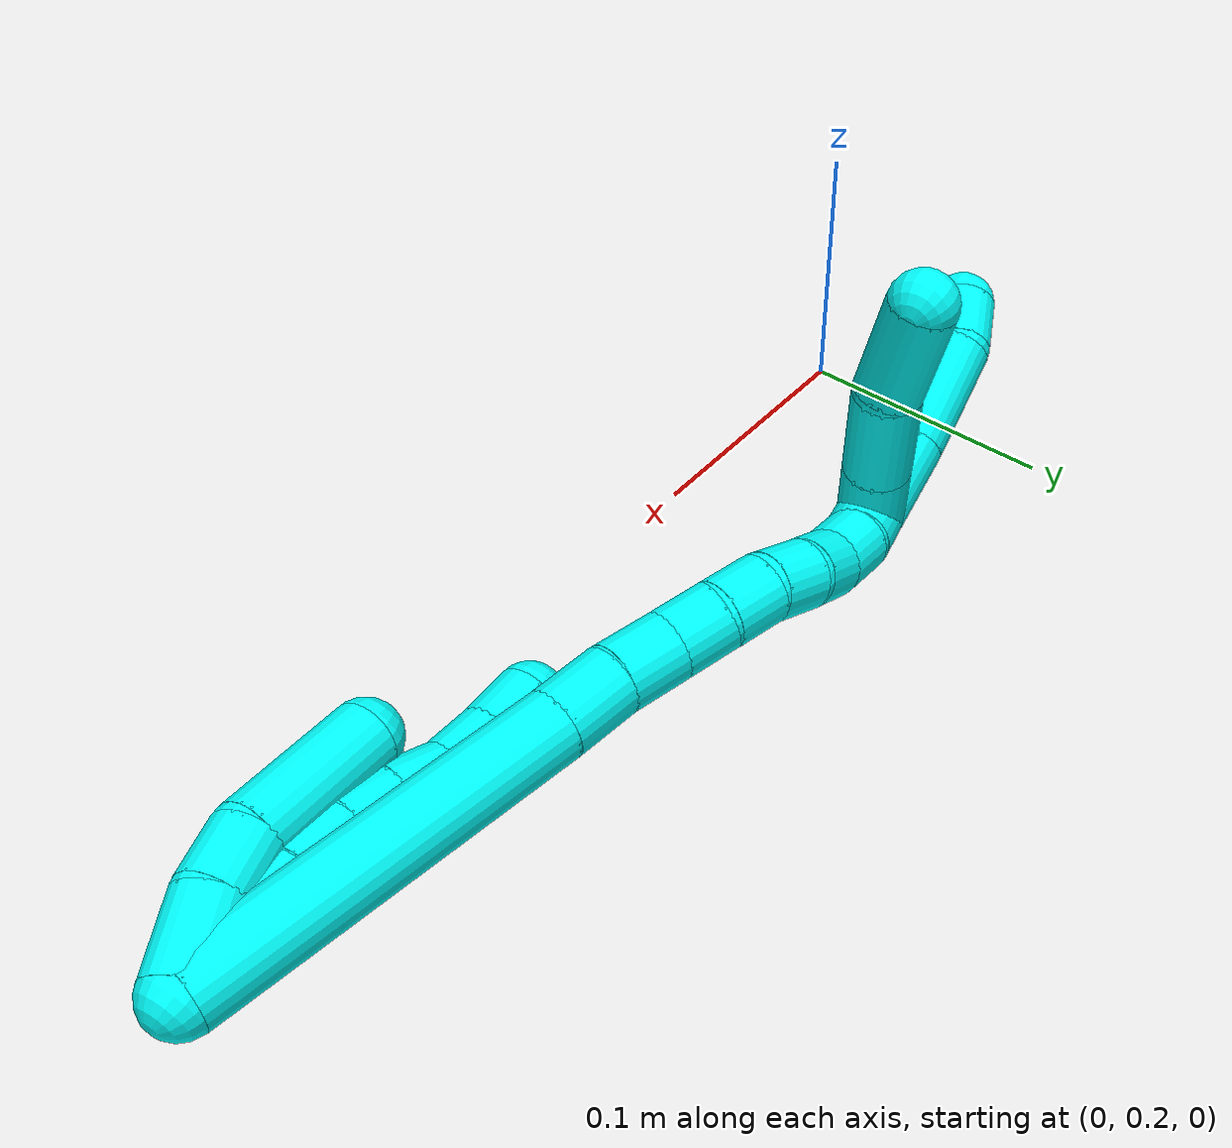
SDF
<sdf version="1.7">
 <world name="default">
  <model name="3">
   <static>0</static>
   <link name="3">
    <collision name="collision-cylinder-e_1_2_8">
     <pose>-0.001311 0.004886 -0.022144 -2.92441 -0.05775 0.517968</pose>
     <geometry><cylinder><radius>0.0125</radius><length>0.045429</length></cylinder></geometry>
     <surface>
      <friction><ode><mu>1.16</mu><mu2>1.16</mu2><slip1>0</slip1><slip2>0</slip2></ode></friction>
      <contact><ode><kp>1e+06</kp><kd>1</kd><max_vel>0</max_vel><min_depth>0.001</min_depth></ode></contact>
     </surface>
    </collision>
    <visual name="visual-cylinder-e_1_2_8">
     <pose>-0.001311 0.004886 -0.022144 -2.92441 -0.05775 0.517968</pose>
     <geometry><cylinder><radius>0.0125</radius><length>0.045429</length></cylinder></geometry>
     <material><ambient>0.003922 1 0.996078 1</ambient></material>
    </visual>
    <collision name="collision-cylinder-e_2_8_9">
     <pose>-0.003463 0.012696 -0.054993 -2.87501 -0.075667 0.550258</pose>
     <geometry><cylinder><radius>0.0125</radius><length>0.022258</length></cylinder></geometry>
     <surface>
      <friction><ode><mu>1.16</mu><mu2>1.16</mu2><slip1>0</slip1><slip2>0</slip2></ode></friction>
      <contact><ode><kp>1e+06</kp><kd>1</kd><max_vel>0</max_vel><min_depth>0.001</min_depth></ode></contact>
     </surface>
    </collision>
    <visual name="visual-cylinder-e_2_8_9">
     <pose>-0.003463 0.012696 -0.054993 -2.87501 -0.075667 0.550258</pose>
     <geometry><cylinder><radius>0.0125</radius><length>0.022258</length></cylinder></geometry>
     <material><ambient>0.003922 1 0.996078 1</ambient></material>
    </visual>
    <collision name="collision-cylinder-e_3_9_10">
     <pose>-0.007234 0.017976 -0.075166 -2.89763 -0.291649 1.75052</pose>
     <geometry><cylinder><radius>0.0125</radius><length>0.020373</length></cylinder></geometry>
     <surface>
      <friction><ode><mu>1.16</mu><mu2>1.16</mu2><slip1>0</slip1><slip2>0</slip2></ode></friction>
      <contact><ode><kp>1e+06</kp><kd>1</kd><max_vel>0</max_vel><min_depth>0.001</min_depth></ode></contact>
     </surface>
    </collision>
    <visual name="visual-cylinder-e_3_9_10">
     <pose>-0.007234 0.017976 -0.075166 -2.89763 -0.291649 1.75052</pose>
     <geometry><cylinder><radius>0.0125</radius><length>0.020373</length></cylinder></geometry>
     <material><ambient>0.003922 1 0.996078 1</ambient></material>
    </visual>
    <collision name="collision-cylinder-e_4_10_11">
     <pose>-0.014491 0.022033 -0.09399 -2.96185 -0.427145 2.354</pose>
     <geometry><cylinder><radius>0.0125</radius><length>0.020895</length></cylinder></geometry>
     <surface>
      <friction><ode><mu>1.16</mu><mu2>1.16</mu2><slip1>0</slip1><slip2>0</slip2></ode></friction>
      <contact><ode><kp>1e+06</kp><kd>1</kd><max_vel>0</max_vel><min_depth>0.001</min_depth></ode></contact>
     </surface>
    </collision>
    <visual name="visual-cylinder-e_4_10_11">
     <pose>-0.014491 0.022033 -0.09399 -2.96185 -0.427145 2.354</pose>
     <geometry><cylinder><radius>0.0125</radius><length>0.020895</length></cylinder></geometry>
     <material><ambient>0.003922 1 0.996078 1</ambient></material>
    </visual>
    <collision name="collision-cylinder-e_5_11_12">
     <pose>-0.020474 0.024687 -0.11343 -3.04727 -0.161955 2.08807</pose>
     <geometry><cylinder><radius>0.0125</radius><length>0.020529</length></cylinder></geometry>
     <surface>
      <friction><ode><mu>1.16</mu><mu2>1.16</mu2><slip1>0</slip1><slip2>0</slip2></ode></friction>
      <contact><ode><kp>1e+06</kp><kd>1</kd><max_vel>0</max_vel><min_depth>0.001</min_depth></ode></contact>
     </surface>
    </collision>
    <visual name="visual-cylinder-e_5_11_12">
     <pose>-0.020474 0.024687 -0.11343 -3.04727 -0.161955 2.08807</pose>
     <geometry><cylinder><radius>0.0125</radius><length>0.020529</length></cylinder></geometry>
     <material><ambient>0.003922 1 0.996078 1</ambient></material>
    </visual>
    <collision name="collision-cylinder-e_6_12_6">
     <pose>-0.023035 0.026454 -0.1337 -3.06199 -0.088401 1.67557</pose>
     <geometry><cylinder><radius>0.0125</radius><length>0.020515</length></cylinder></geometry>
     <surface>
      <friction><ode><mu>1.16</mu><mu2>1.16</mu2><slip1>0</slip1><slip2>0</slip2></ode></friction>
      <contact><ode><kp>1e+06</kp><kd>1</kd><max_vel>0</max_vel><min_depth>0.001</min_depth></ode></contact>
     </surface>
    </collision>
    <visual name="visual-cylinder-e_6_12_6">
     <pose>-0.023035 0.026454 -0.1337 -3.06199 -0.088401 1.67557</pose>
     <geometry><cylinder><radius>0.0125</radius><length>0.020515</length></cylinder></geometry>
     <material><ambient>0.003922 1 0.996078 1</ambient></material>
    </visual>
    <collision name="collision-cylinder-e_1_2_13">
     <pose>0.005341 0.001763 -0.01275 -3.00422 0.393298 -2.4766</pose>
     <geometry><cylinder><radius>0.0125</radius><length>0.027871</length></cylinder></geometry>
     <surface>
      <friction><ode><mu>1.16</mu><mu2>1.16</mu2><slip1>0</slip1><slip2>0</slip2></ode></friction>
      <contact><ode><kp>1e+06</kp><kd>1</kd><max_vel>0</max_vel><min_depth>0.001</min_depth></ode></contact>
     </surface>
    </collision>
    <visual name="visual-cylinder-e_1_2_13">
     <pose>0.005341 0.001763 -0.01275 -3.00422 0.393298 -2.4766</pose>
     <geometry><cylinder><radius>0.0125</radius><length>0.027871</length></cylinder></geometry>
     <material><ambient>0.003922 1 0.996078 1</ambient></material>
    </visual>
    <collision name="collision-cylinder-e_2_13_14">
     <pose>0.012542 0.005312 -0.035833 -2.97031 0.175619 -1.59594</pose>
     <geometry><cylinder><radius>0.0125</radius><length>0.021298</length></cylinder></geometry>
     <surface>
      <friction><ode><mu>1.16</mu><mu2>1.16</mu2><slip1>0</slip1><slip2>0</slip2></ode></friction>
      <contact><ode><kp>1e+06</kp><kd>1</kd><max_vel>0</max_vel><min_depth>0.001</min_depth></ode></contact>
     </surface>
    </collision>
    <visual name="visual-cylinder-e_2_13_14">
     <pose>0.012542 0.005312 -0.035833 -2.97031 0.175619 -1.59594</pose>
     <geometry><cylinder><radius>0.0125</radius><length>0.021298</length></cylinder></geometry>
     <material><ambient>0.003922 1 0.996078 1</ambient></material>
    </visual>
    <collision name="collision-cylinder-e_3_14_5">
     <pose>0.011448 0.012608 -0.070799 -2.92161 -0.116522 0.971823</pose>
     <geometry><cylinder><radius>0.0125</radius><length>0.050831</length></cylinder></geometry>
     <surface>
      <friction><ode><mu>1.16</mu><mu2>1.16</mu2><slip1>0</slip1><slip2>0</slip2></ode></friction>
      <contact><ode><kp>1e+06</kp><kd>1</kd><max_vel>0</max_vel><min_depth>0.001</min_depth></ode></contact>
     </surface>
    </collision>
    <visual name="visual-cylinder-e_3_14_5">
     <pose>0.011448 0.012608 -0.070799 -2.92161 -0.116522 0.971823</pose>
     <geometry><cylinder><radius>0.0125</radius><length>0.050831</length></cylinder></geometry>
     <material><ambient>0.003922 1 0.996078 1</ambient></material>
    </visual>
    <collision name="collision-cylinder-e_1_2_15">
     <pose>-0.018101 -0.001883 -0.063469 3.11193 -0.277697 -2.93009</pose>
     <geometry><cylinder><radius>0.0125</radius><length>0.132053</length></cylinder></geometry>
     <surface>
      <friction><ode><mu>1.16</mu><mu2>1.16</mu2><slip1>0</slip1><slip2>0</slip2></ode></friction>
      <contact><ode><kp>1e+06</kp><kd>1</kd><max_vel>0</max_vel><min_depth>0.001</min_depth></ode></contact>
     </surface>
    </collision>
    <visual name="visual-cylinder-e_1_2_15">
     <pose>-0.018101 -0.001883 -0.063469 3.11193 -0.277697 -2.93009</pose>
     <geometry><cylinder><radius>0.0125</radius><length>0.132053</length></cylinder></geometry>
     <material><ambient>0.003922 1 0.996078 1</ambient></material>
    </visual>
    <collision name="collision-cylinder-e_2_15_16">
     <pose>-0.03916 -0.004324 -0.138718 3.09431 -0.245869 -2.76345</pose>
     <geometry><cylinder><radius>0.0125</radius><length>0.024316</length></cylinder></geometry>
     <surface>
      <friction><ode><mu>1.16</mu><mu2>1.16</mu2><slip1>0</slip1><slip2>0</slip2></ode></friction>
      <contact><ode><kp>1e+06</kp><kd>1</kd><max_vel>0</max_vel><min_depth>0.001</min_depth></ode></contact>
     </surface>
    </collision>
    <visual name="visual-cylinder-e_2_15_16">
     <pose>-0.03916 -0.004324 -0.138718 3.09431 -0.245869 -2.76345</pose>
     <geometry><cylinder><radius>0.0125</radius><length>0.024316</length></cylinder></geometry>
     <material><ambient>0.003922 1 0.996078 1</ambient></material>
    </visual>
    <collision name="collision-cylinder-e_3_16_17">
     <pose>-0.046102 -0.004795 -0.161605 -3.13384 -0.344186 3.09701</pose>
     <geometry><cylinder><radius>0.0125</radius><length>0.023601</length></cylinder></geometry>
     <surface>
      <friction><ode><mu>1.16</mu><mu2>1.16</mu2><slip1>0</slip1><slip2>0</slip2></ode></friction>
      <contact><ode><kp>1e+06</kp><kd>1</kd><max_vel>0</max_vel><min_depth>0.001</min_depth></ode></contact>
     </surface>
    </collision>
    <visual name="visual-cylinder-e_3_16_17">
     <pose>-0.046102 -0.004795 -0.161605 -3.13384 -0.344186 3.09701</pose>
     <geometry><cylinder><radius>0.0125</radius><length>0.023601</length></cylinder></geometry>
     <material><ambient>0.003922 1 0.996078 1</ambient></material>
    </visual>
    <collision name="collision-cylinder-e_4_17_18">
     <pose>-0.053696 -0.006874 -0.181797 2.90767 -0.369095 -2.01803</pose>
     <geometry><cylinder><radius>0.0125</radius><length>0.020024</length></cylinder></geometry>
     <surface>
      <friction><ode><mu>1.16</mu><mu2>1.16</mu2><slip1>0</slip1><slip2>0</slip2></ode></friction>
      <contact><ode><kp>1e+06</kp><kd>1</kd><max_vel>0</max_vel><min_depth>0.001</min_depth></ode></contact>
     </surface>
    </collision>
    <visual name="visual-cylinder-e_4_17_18">
     <pose>-0.053696 -0.006874 -0.181797 2.90767 -0.369095 -2.01803</pose>
     <geometry><cylinder><radius>0.0125</radius><length>0.020024</length></cylinder></geometry>
     <material><ambient>0.003922 1 0.996078 1</ambient></material>
    </visual>
    <collision name="collision-cylinder-e_5_18_19">
     <pose>-0.060721 -0.009285 -0.200277 3.11537 -0.348341 -2.99282</pose>
     <geometry><cylinder><radius>0.0125</radius><length>0.020001</length></cylinder></geometry>
     <surface>
      <friction><ode><mu>1.16</mu><mu2>1.16</mu2><slip1>0</slip1><slip2>0</slip2></ode></friction>
      <contact><ode><kp>1e+06</kp><kd>1</kd><max_vel>0</max_vel><min_depth>0.001</min_depth></ode></contact>
     </surface>
    </collision>
    <visual name="visual-cylinder-e_5_18_19">
     <pose>-0.060721 -0.009285 -0.200277 3.11537 -0.348341 -2.99282</pose>
     <geometry><cylinder><radius>0.0125</radius><length>0.020001</length></cylinder></geometry>
     <material><ambient>0.003922 1 0.996078 1</ambient></material>
    </visual>
    <collision name="collision-cylinder-e_6_19_20">
     <pose>-0.068366 -0.007144 -0.218416 -2.87504 -0.436802 2.05476</pose>
     <geometry><cylinder><radius>0.0125</radius><length>0.020003</length></cylinder></geometry>
     <surface>
      <friction><ode><mu>1.16</mu><mu2>1.16</mu2><slip1>0</slip1><slip2>0</slip2></ode></friction>
      <contact><ode><kp>1e+06</kp><kd>1</kd><max_vel>0</max_vel><min_depth>0.001</min_depth></ode></contact>
     </surface>
    </collision>
    <visual name="visual-cylinder-e_6_19_20">
     <pose>-0.068366 -0.007144 -0.218416 -2.87504 -0.436802 2.05476</pose>
     <geometry><cylinder><radius>0.0125</radius><length>0.020003</length></cylinder></geometry>
     <material><ambient>0.003922 1 0.996078 1</ambient></material>
    </visual>
    <collision name="collision-cylinder-e_7_20_21">
     <pose>-0.075572 -0.000164 -0.235529 -2.63977 -0.302103 1.07177</pose>
     <geometry><cylinder><radius>0.0125</radius><length>0.020001</length></cylinder></geometry>
     <surface>
      <friction><ode><mu>1.16</mu><mu2>1.16</mu2><slip1>0</slip1><slip2>0</slip2></ode></friction>
      <contact><ode><kp>1e+06</kp><kd>1</kd><max_vel>0</max_vel><min_depth>0.001</min_depth></ode></contact>
     </surface>
    </collision>
    <visual name="visual-cylinder-e_7_20_21">
     <pose>-0.075572 -0.000164 -0.235529 -2.63977 -0.302103 1.07177</pose>
     <geometry><cylinder><radius>0.0125</radius><length>0.020001</length></cylinder></geometry>
     <material><ambient>0.003922 1 0.996078 1</ambient></material>
    </visual>
    <collision name="collision-cylinder-e_8_21_22">
     <pose>-0.080494 0.006819 -0.253412 -2.89536 -0.195835 1.34195</pose>
     <geometry><cylinder><radius>0.0125</radius><length>0.02</length></cylinder></geometry>
     <surface>
      <friction><ode><mu>1.16</mu><mu2>1.16</mu2><slip1>0</slip1><slip2>0</slip2></ode></friction>
      <contact><ode><kp>1e+06</kp><kd>1</kd><max_vel>0</max_vel><min_depth>0.001</min_depth></ode></contact>
     </surface>
    </collision>
    <visual name="visual-cylinder-e_8_21_22">
     <pose>-0.080494 0.006819 -0.253412 -2.89536 -0.195835 1.34195</pose>
     <geometry><cylinder><radius>0.0125</radius><length>0.02</length></cylinder></geometry>
     <material><ambient>0.003922 1 0.996078 1</ambient></material>
    </visual>
    <collision name="collision-cylinder-e_9_22_1">
     <pose>-0.082332 0.012628 -0.272322 -2.79274 0.010774 -0.061119</pose>
     <geometry><cylinder><radius>0.0125</radius><length>0.02</length></cylinder></geometry>
     <surface>
      <friction><ode><mu>1.16</mu><mu2>1.16</mu2><slip1>0</slip1><slip2>0</slip2></ode></friction>
      <contact><ode><kp>1e+06</kp><kd>1</kd><max_vel>0</max_vel><min_depth>0.001</min_depth></ode></contact>
     </surface>
    </collision>
    <visual name="visual-cylinder-e_9_22_1">
     <pose>-0.082332 0.012628 -0.272322 -2.79274 0.010774 -0.061119</pose>
     <geometry><cylinder><radius>0.0125</radius><length>0.02</length></cylinder></geometry>
     <material><ambient>0.003922 1 0.996078 1</ambient></material>
    </visual>
    <collision name="collision-cylinder-e_1_1_23">
     <pose>-0.077445 0.004096 -0.281975 1.59215 0.380337 0.388345</pose>
     <geometry><cylinder><radius>0.0125</radius><length>0.025746</length></cylinder></geometry>
     <surface>
      <friction><ode><mu>1.16</mu><mu2>1.16</mu2><slip1>0</slip1><slip2>0</slip2></ode></friction>
      <contact><ode><kp>1e+06</kp><kd>1</kd><max_vel>0</max_vel><min_depth>0.001</min_depth></ode></contact>
     </surface>
    </collision>
    <visual name="visual-cylinder-e_1_1_23">
     <pose>-0.077445 0.004096 -0.281975 1.59215 0.380337 0.388345</pose>
     <geometry><cylinder><radius>0.0125</radius><length>0.025746</length></cylinder></geometry>
     <material><ambient>0.003922 1 0.996078 1</ambient></material>
    </visual>
    <collision name="collision-cylinder-e_2_23_24">
     <pose>-0.065756 -0.025021 -0.282649 1.5952 0.3826 0.391816</pose>
     <geometry><cylinder><radius>0.0125</radius><length>0.037021</length></cylinder></geometry>
     <surface>
      <friction><ode><mu>1.16</mu><mu2>1.16</mu2><slip1>0</slip1><slip2>0</slip2></ode></friction>
      <contact><ode><kp>1e+06</kp><kd>1</kd><max_vel>0</max_vel><min_depth>0.001</min_depth></ode></contact>
     </surface>
    </collision>
    <visual name="visual-cylinder-e_2_23_24">
     <pose>-0.065756 -0.025021 -0.282649 1.5952 0.3826 0.391816</pose>
     <geometry><cylinder><radius>0.0125</radius><length>0.037021</length></cylinder></geometry>
     <material><ambient>0.003922 1 0.996078 1</ambient></material>
    </visual>
    <collision name="collision-cylinder-e_3_24_4">
     <pose>-0.054584 -0.059933 -0.286748 1.77525 0.230925 0.283081</pose>
     <geometry><cylinder><radius>0.0125</radius><length>0.037233</length></cylinder></geometry>
     <surface>
      <friction><ode><mu>1.16</mu><mu2>1.16</mu2><slip1>0</slip1><slip2>0</slip2></ode></friction>
      <contact><ode><kp>1e+06</kp><kd>1</kd><max_vel>0</max_vel><min_depth>0.001</min_depth></ode></contact>
     </surface>
    </collision>
    <visual name="visual-cylinder-e_3_24_4">
     <pose>-0.054584 -0.059933 -0.286748 1.77525 0.230925 0.283081</pose>
     <geometry><cylinder><radius>0.0125</radius><length>0.037233</length></cylinder></geometry>
     <material><ambient>0.003922 1 0.996078 1</ambient></material>
    </visual>
    <collision name="collision-cylinder-e_1_1_25">
     <pose>-0.080699 0.011943 -0.298043 2.89532 0.090352 0.700427</pose>
     <geometry><cylinder><radius>0.0125</radius><length>0.033801</length></cylinder></geometry>
     <surface>
      <friction><ode><mu>1.16</mu><mu2>1.16</mu2><slip1>0</slip1><slip2>0</slip2></ode></friction>
      <contact><ode><kp>1e+06</kp><kd>1</kd><max_vel>0</max_vel><min_depth>0.001</min_depth></ode></contact>
     </surface>
    </collision>
    <visual name="visual-cylinder-e_1_1_25">
     <pose>-0.080699 0.011943 -0.298043 2.89532 0.090352 0.700427</pose>
     <geometry><cylinder><radius>0.0125</radius><length>0.033801</length></cylinder></geometry>
     <material><ambient>0.003922 1 0.996078 1</ambient></material>
    </visual>
    <collision name="collision-cylinder-e_2_25_26">
     <pose>-0.075825 0.001782 -0.335551 2.86309 0.150874 0.989108</pose>
     <geometry><cylinder><radius>0.0125</radius><length>0.044572</length></cylinder></geometry>
     <surface>
      <friction><ode><mu>1.16</mu><mu2>1.16</mu2><slip1>0</slip1><slip2>0</slip2></ode></friction>
      <contact><ode><kp>1e+06</kp><kd>1</kd><max_vel>0</max_vel><min_depth>0.001</min_depth></ode></contact>
     </surface>
    </collision>
    <visual name="visual-cylinder-e_2_25_26">
     <pose>-0.075825 0.001782 -0.335551 2.86309 0.150874 0.989108</pose>
     <geometry><cylinder><radius>0.0125</radius><length>0.044572</length></cylinder></geometry>
     <material><ambient>0.003922 1 0.996078 1</ambient></material>
    </visual>
    <collision name="collision-cylinder-e_3_26_3">
     <pose>-0.068418 -0.004666 -0.366751 3.10257 0.384589 2.94179</pose>
     <geometry><cylinder><radius>0.0125</radius><length>0.021627</length></cylinder></geometry>
     <surface>
      <friction><ode><mu>1.16</mu><mu2>1.16</mu2><slip1>0</slip1><slip2>0</slip2></ode></friction>
      <contact><ode><kp>1e+06</kp><kd>1</kd><max_vel>0</max_vel><min_depth>0.001</min_depth></ode></contact>
     </surface>
    </collision>
    <visual name="visual-cylinder-e_3_26_3">
     <pose>-0.068418 -0.004666 -0.366751 3.10257 0.384589 2.94179</pose>
     <geometry><cylinder><radius>0.0125</radius><length>0.021627</length></cylinder></geometry>
     <material><ambient>0.003922 1 0.996078 1</ambient></material>
    </visual>
    <collision name="collision-sphere-3">
     <pose>-0.064361 -0.005057 -0.376767 0 -0 0</pose>
     <geometry><sphere><radius>0.0125</radius></sphere></geometry>
     <surface>
      <friction><ode><mu>1.16</mu><mu2>1.16</mu2><slip1>0</slip1><slip2>0</slip2></ode></friction>
      <contact><ode><kp>1e+06</kp><kd>1</kd><max_vel>0</max_vel><min_depth>0.001</min_depth></ode></contact>
     </surface>
    </collision>
    <visual name="visual-sphere-3">
     <pose>-0.064361 -0.005057 -0.376767 0 -0 0</pose>
     <geometry><sphere><radius>0.0125</radius></sphere></geometry>
     <material><ambient>0.003922 1 0.996078 1</ambient></material>
    </visual>
    <collision name="collision-sphere-26">
     <pose>-0.072475 -0.004275 -0.356735 0 -0 0</pose>
     <geometry><sphere><radius>0.0125</radius></sphere></geometry>
     <surface>
      <friction><ode><mu>1.16</mu><mu2>1.16</mu2><slip1>0</slip1><slip2>0</slip2></ode></friction>
      <contact><ode><kp>1e+06</kp><kd>1</kd><max_vel>0</max_vel><min_depth>0.001</min_depth></ode></contact>
     </surface>
    </collision>
    <visual name="visual-sphere-26">
     <pose>-0.072475 -0.004275 -0.356735 0 -0 0</pose>
     <geometry><sphere><radius>0.0125</radius></sphere></geometry>
     <material><ambient>0.003922 1 0.996078 1</ambient></material>
    </visual>
    <collision name="collision-sphere-25">
     <pose>-0.079174 0.00784 -0.314367 0 -0 0</pose>
     <geometry><sphere><radius>0.0125</radius></sphere></geometry>
     <surface>
      <friction><ode><mu>1.16</mu><mu2>1.16</mu2><slip1>0</slip1><slip2>0</slip2></ode></friction>
      <contact><ode><kp>1e+06</kp><kd>1</kd><max_vel>0</max_vel><min_depth>0.001</min_depth></ode></contact>
     </surface>
    </collision>
    <visual name="visual-sphere-25">
     <pose>-0.079174 0.00784 -0.314367 0 -0 0</pose>
     <geometry><sphere><radius>0.0125</radius></sphere></geometry>
     <material><ambient>0.003922 1 0.996078 1</ambient></material>
    </visual>
    <collision name="collision-sphere-4">
     <pose>-0.050323 -0.077678 -0.290427 0 -0 0</pose>
     <geometry><sphere><radius>0.0125</radius></sphere></geometry>
     <surface>
      <friction><ode><mu>1.16</mu><mu2>1.16</mu2><slip1>0</slip1><slip2>0</slip2></ode></friction>
      <contact><ode><kp>1e+06</kp><kd>1</kd><max_vel>0</max_vel><min_depth>0.001</min_depth></ode></contact>
     </surface>
    </collision>
    <visual name="visual-sphere-4">
     <pose>-0.050323 -0.077678 -0.290427 0 -0 0</pose>
     <geometry><sphere><radius>0.0125</radius></sphere></geometry>
     <material><ambient>0.003922 1 0.996078 1</ambient></material>
    </visual>
    <collision name="collision-sphere-24">
     <pose>-0.058845 -0.042188 -0.283068 0 -0 0</pose>
     <geometry><sphere><radius>0.0125</radius></sphere></geometry>
     <surface>
      <friction><ode><mu>1.16</mu><mu2>1.16</mu2><slip1>0</slip1><slip2>0</slip2></ode></friction>
      <contact><ode><kp>1e+06</kp><kd>1</kd><max_vel>0</max_vel><min_depth>0.001</min_depth></ode></contact>
     </surface>
    </collision>
    <visual name="visual-sphere-24">
     <pose>-0.058845 -0.042188 -0.283068 0 -0 0</pose>
     <geometry><sphere><radius>0.0125</radius></sphere></geometry>
     <material><ambient>0.003922 1 0.996078 1</ambient></material>
    </visual>
    <collision name="collision-sphere-23">
     <pose>-0.072666 -0.007855 -0.28223 0 -0 0</pose>
     <geometry><sphere><radius>0.0125</radius></sphere></geometry>
     <surface>
      <friction><ode><mu>1.16</mu><mu2>1.16</mu2><slip1>0</slip1><slip2>0</slip2></ode></friction>
      <contact><ode><kp>1e+06</kp><kd>1</kd><max_vel>0</max_vel><min_depth>0.001</min_depth></ode></contact>
     </surface>
    </collision>
    <visual name="visual-sphere-23">
     <pose>-0.072666 -0.007855 -0.28223 0 -0 0</pose>
     <geometry><sphere><radius>0.0125</radius></sphere></geometry>
     <material><ambient>0.003922 1 0.996078 1</ambient></material>
    </visual>
    <collision name="collision-sphere-1">
     <pose>-0.082224 0.016046 -0.28172 0 -0 0</pose>
     <geometry><sphere><radius>0.0125</radius></sphere></geometry>
     <surface>
      <friction><ode><mu>1.16</mu><mu2>1.16</mu2><slip1>0</slip1><slip2>0</slip2></ode></friction>
      <contact><ode><kp>1e+06</kp><kd>1</kd><max_vel>0</max_vel><min_depth>0.001</min_depth></ode></contact>
     </surface>
    </collision>
    <visual name="visual-sphere-1">
     <pose>-0.082224 0.016046 -0.28172 0 -0 0</pose>
     <geometry><sphere><radius>0.0125</radius></sphere></geometry>
     <material><ambient>0.003922 1 0.996078 1</ambient></material>
    </visual>
    <collision name="collision-sphere-22">
     <pose>-0.08244 0.00921 -0.262925 0 -0 0</pose>
     <geometry><sphere><radius>0.0125</radius></sphere></geometry>
     <surface>
      <friction><ode><mu>1.16</mu><mu2>1.16</mu2><slip1>0</slip1><slip2>0</slip2></ode></friction>
      <contact><ode><kp>1e+06</kp><kd>1</kd><max_vel>0</max_vel><min_depth>0.001</min_depth></ode></contact>
     </surface>
    </collision>
    <visual name="visual-sphere-22">
     <pose>-0.08244 0.00921 -0.262925 0 -0 0</pose>
     <geometry><sphere><radius>0.0125</radius></sphere></geometry>
     <material><ambient>0.003922 1 0.996078 1</ambient></material>
    </visual>
    <collision name="collision-sphere-21">
     <pose>-0.078548 0.004428 -0.243899 0 -0 0</pose>
     <geometry><sphere><radius>0.0125</radius></sphere></geometry>
     <surface>
      <friction><ode><mu>1.16</mu><mu2>1.16</mu2><slip1>0</slip1><slip2>0</slip2></ode></friction>
      <contact><ode><kp>1e+06</kp><kd>1</kd><max_vel>0</max_vel><min_depth>0.001</min_depth></ode></contact>
     </surface>
    </collision>
    <visual name="visual-sphere-21">
     <pose>-0.078548 0.004428 -0.243899 0 -0 0</pose>
     <geometry><sphere><radius>0.0125</radius></sphere></geometry>
     <material><ambient>0.003922 1 0.996078 1</ambient></material>
    </visual>
    <collision name="collision-sphere-12">
     <pose>-0.022129 0.025641 -0.123515 0 -0 0</pose>
     <geometry><sphere><radius>0.0125</radius></sphere></geometry>
     <surface>
      <friction><ode><mu>1.16</mu><mu2>1.16</mu2><slip1>0</slip1><slip2>0</slip2></ode></friction>
      <contact><ode><kp>1e+06</kp><kd>1</kd><max_vel>0</max_vel><min_depth>0.001</min_depth></ode></contact>
     </surface>
    </collision>
    <visual name="visual-sphere-12">
     <pose>-0.022129 0.025641 -0.123515 0 -0 0</pose>
     <geometry><sphere><radius>0.0125</radius></sphere></geometry>
     <material><ambient>0.003922 1 0.996078 1</ambient></material>
    </visual>
    <collision name="collision-sphere-11">
     <pose>-0.018819 0.023733 -0.103345 0 -0 0</pose>
     <geometry><sphere><radius>0.0125</radius></sphere></geometry>
     <surface>
      <friction><ode><mu>1.16</mu><mu2>1.16</mu2><slip1>0</slip1><slip2>0</slip2></ode></friction>
      <contact><ode><kp>1e+06</kp><kd>1</kd><max_vel>0</max_vel><min_depth>0.001</min_depth></ode></contact>
     </surface>
    </collision>
    <visual name="visual-sphere-11">
     <pose>-0.018819 0.023733 -0.103345 0 -0 0</pose>
     <geometry><sphere><radius>0.0125</radius></sphere></geometry>
     <material><ambient>0.003922 1 0.996078 1</ambient></material>
    </visual>
    <collision name="collision-sphere-10">
     <pose>-0.010163 0.020333 -0.084634 0 -0 0</pose>
     <geometry><sphere><radius>0.0125</radius></sphere></geometry>
     <surface>
      <friction><ode><mu>1.16</mu><mu2>1.16</mu2><slip1>0</slip1><slip2>0</slip2></ode></friction>
      <contact><ode><kp>1e+06</kp><kd>1</kd><max_vel>0</max_vel><min_depth>0.001</min_depth></ode></contact>
     </surface>
    </collision>
    <visual name="visual-sphere-10">
     <pose>-0.010163 0.020333 -0.084634 0 -0 0</pose>
     <geometry><sphere><radius>0.0125</radius></sphere></geometry>
     <material><ambient>0.003922 1 0.996078 1</ambient></material>
    </visual>
    <collision name="collision-sphere-9">
     <pose>-0.004305 0.01562 -0.065699 0 -0 0</pose>
     <geometry><sphere><radius>0.0125</radius></sphere></geometry>
     <surface>
      <friction><ode><mu>1.16</mu><mu2>1.16</mu2><slip1>0</slip1><slip2>0</slip2></ode></friction>
      <contact><ode><kp>1e+06</kp><kd>1</kd><max_vel>0</max_vel><min_depth>0.001</min_depth></ode></contact>
     </surface>
    </collision>
    <visual name="visual-sphere-9">
     <pose>-0.004305 0.01562 -0.065699 0 -0 0</pose>
     <geometry><sphere><radius>0.0125</radius></sphere></geometry>
     <material><ambient>0.003922 1 0.996078 1</ambient></material>
    </visual>
    <collision name="collision-sphere-2">
     <geometry><sphere><radius>0.0125</radius></sphere></geometry>
     <surface>
      <friction><ode><mu>1.16</mu><mu2>1.16</mu2><slip1>0</slip1><slip2>0</slip2></ode></friction>
      <contact><ode><kp>1e+06</kp><kd>1</kd><max_vel>0</max_vel><min_depth>0.001</min_depth></ode></contact>
     </surface>
    </collision>
    <visual name="visual-sphere-2">
     <geometry><sphere><radius>0.0125</radius></sphere></geometry>
     <material><ambient>0.003922 1 0.996078 1</ambient></material>
    </visual>
    <collision name="collision-sphere-19">
     <pose>-0.064135 -0.009531 -0.209673 0 -0 0</pose>
     <geometry><sphere><radius>0.0125</radius></sphere></geometry>
     <surface>
      <friction><ode><mu>1.16</mu><mu2>1.16</mu2><slip1>0</slip1><slip2>0</slip2></ode></friction>
      <contact><ode><kp>1e+06</kp><kd>1</kd><max_vel>0</max_vel><min_depth>0.001</min_depth></ode></contact>
     </surface>
    </collision>
    <visual name="visual-sphere-19">
     <pose>-0.064135 -0.009531 -0.209673 0 -0 0</pose>
     <geometry><sphere><radius>0.0125</radius></sphere></geometry>
     <material><ambient>0.003922 1 0.996078 1</ambient></material>
    </visual>
    <collision name="collision-sphere-8">
     <pose>-0.002622 0.009773 -0.044288 0 -0 0</pose>
     <geometry><sphere><radius>0.0125</radius></sphere></geometry>
     <surface>
      <friction><ode><mu>1.16</mu><mu2>1.16</mu2><slip1>0</slip1><slip2>0</slip2></ode></friction>
      <contact><ode><kp>1e+06</kp><kd>1</kd><max_vel>0</max_vel><min_depth>0.001</min_depth></ode></contact>
     </surface>
    </collision>
    <visual name="visual-sphere-8">
     <pose>-0.002622 0.009773 -0.044288 0 -0 0</pose>
     <geometry><sphere><radius>0.0125</radius></sphere></geometry>
     <material><ambient>0.003922 1 0.996078 1</ambient></material>
    </visual>
    <collision name="collision-sphere-6">
     <pose>-0.02394 0.027266 -0.143886 0 -0 0</pose>
     <geometry><sphere><radius>0.0125</radius></sphere></geometry>
     <surface>
      <friction><ode><mu>1.16</mu><mu2>1.16</mu2><slip1>0</slip1><slip2>0</slip2></ode></friction>
      <contact><ode><kp>1e+06</kp><kd>1</kd><max_vel>0</max_vel><min_depth>0.001</min_depth></ode></contact>
     </surface>
    </collision>
    <visual name="visual-sphere-6">
     <pose>-0.02394 0.027266 -0.143886 0 -0 0</pose>
     <geometry><sphere><radius>0.0125</radius></sphere></geometry>
     <material><ambient>0.003922 1 0.996078 1</ambient></material>
    </visual>
    <collision name="collision-sphere-13">
     <pose>0.010681 0.003525 -0.025501 0 -0 0</pose>
     <geometry><sphere><radius>0.0125</radius></sphere></geometry>
     <surface>
      <friction><ode><mu>1.16</mu><mu2>1.16</mu2><slip1>0</slip1><slip2>0</slip2></ode></friction>
      <contact><ode><kp>1e+06</kp><kd>1</kd><max_vel>0</max_vel><min_depth>0.001</min_depth></ode></contact>
     </surface>
    </collision>
    <visual name="visual-sphere-13">
     <pose>0.010681 0.003525 -0.025501 0 -0 0</pose>
     <geometry><sphere><radius>0.0125</radius></sphere></geometry>
     <material><ambient>0.003922 1 0.996078 1</ambient></material>
    </visual>
    <collision name="collision-sphere-14">
     <pose>0.014402 0.0071 -0.046164 0 -0 0</pose>
     <geometry><sphere><radius>0.0125</radius></sphere></geometry>
     <surface>
      <friction><ode><mu>1.16</mu><mu2>1.16</mu2><slip1>0</slip1><slip2>0</slip2></ode></friction>
      <contact><ode><kp>1e+06</kp><kd>1</kd><max_vel>0</max_vel><min_depth>0.001</min_depth></ode></contact>
     </surface>
    </collision>
    <visual name="visual-sphere-14">
     <pose>0.014402 0.0071 -0.046164 0 -0 0</pose>
     <geometry><sphere><radius>0.0125</radius></sphere></geometry>
     <material><ambient>0.003922 1 0.996078 1</ambient></material>
    </visual>
    <collision name="collision-sphere-5">
     <pose>0.008493 0.018116 -0.095434 0 -0 0</pose>
     <geometry><sphere><radius>0.0125</radius></sphere></geometry>
     <surface>
      <friction><ode><mu>1.16</mu><mu2>1.16</mu2><slip1>0</slip1><slip2>0</slip2></ode></friction>
      <contact><ode><kp>1e+06</kp><kd>1</kd><max_vel>0</max_vel><min_depth>0.001</min_depth></ode></contact>
     </surface>
    </collision>
    <visual name="visual-sphere-5">
     <pose>0.008493 0.018116 -0.095434 0 -0 0</pose>
     <geometry><sphere><radius>0.0125</radius></sphere></geometry>
     <material><ambient>0.003922 1 0.996078 1</ambient></material>
    </visual>
    <collision name="collision-sphere-15">
     <pose>-0.036201 -0.003767 -0.126938 0 -0 0</pose>
     <geometry><sphere><radius>0.0125</radius></sphere></geometry>
     <surface>
      <friction><ode><mu>1.16</mu><mu2>1.16</mu2><slip1>0</slip1><slip2>0</slip2></ode></friction>
      <contact><ode><kp>1e+06</kp><kd>1</kd><max_vel>0</max_vel><min_depth>0.001</min_depth></ode></contact>
     </surface>
    </collision>
    <visual name="visual-sphere-15">
     <pose>-0.036201 -0.003767 -0.126938 0 -0 0</pose>
     <geometry><sphere><radius>0.0125</radius></sphere></geometry>
     <material><ambient>0.003922 1 0.996078 1</ambient></material>
    </visual>
    <collision name="collision-sphere-16">
     <pose>-0.04212 -0.004881 -0.150497 0 -0 0</pose>
     <geometry><sphere><radius>0.0125</radius></sphere></geometry>
     <surface>
      <friction><ode><mu>1.16</mu><mu2>1.16</mu2><slip1>0</slip1><slip2>0</slip2></ode></friction>
      <contact><ode><kp>1e+06</kp><kd>1</kd><max_vel>0</max_vel><min_depth>0.001</min_depth></ode></contact>
     </surface>
    </collision>
    <visual name="visual-sphere-16">
     <pose>-0.04212 -0.004881 -0.150497 0 -0 0</pose>
     <geometry><sphere><radius>0.0125</radius></sphere></geometry>
     <material><ambient>0.003922 1 0.996078 1</ambient></material>
    </visual>
    <collision name="collision-sphere-17">
     <pose>-0.050083 -0.004709 -0.172713 0 -0 0</pose>
     <geometry><sphere><radius>0.0125</radius></sphere></geometry>
     <surface>
      <friction><ode><mu>1.16</mu><mu2>1.16</mu2><slip1>0</slip1><slip2>0</slip2></ode></friction>
      <contact><ode><kp>1e+06</kp><kd>1</kd><max_vel>0</max_vel><min_depth>0.001</min_depth></ode></contact>
     </surface>
    </collision>
    <visual name="visual-sphere-17">
     <pose>-0.050083 -0.004709 -0.172713 0 -0 0</pose>
     <geometry><sphere><radius>0.0125</radius></sphere></geometry>
     <material><ambient>0.003922 1 0.996078 1</ambient></material>
    </visual>
    <collision name="collision-sphere-18">
     <pose>-0.057308 -0.009038 -0.19088 0 -0 0</pose>
     <geometry><sphere><radius>0.0125</radius></sphere></geometry>
     <surface>
      <friction><ode><mu>1.16</mu><mu2>1.16</mu2><slip1>0</slip1><slip2>0</slip2></ode></friction>
      <contact><ode><kp>1e+06</kp><kd>1</kd><max_vel>0</max_vel><min_depth>0.001</min_depth></ode></contact>
     </surface>
    </collision>
    <visual name="visual-sphere-18">
     <pose>-0.057308 -0.009038 -0.19088 0 -0 0</pose>
     <geometry><sphere><radius>0.0125</radius></sphere></geometry>
     <material><ambient>0.003922 1 0.996078 1</ambient></material>
    </visual>
    <collision name="collision-sphere-20">
     <pose>-0.072597 -0.004757 -0.227158 0 -0 0</pose>
     <geometry><sphere><radius>0.0125</radius></sphere></geometry>
     <surface>
      <friction><ode><mu>1.16</mu><mu2>1.16</mu2><slip1>0</slip1><slip2>0</slip2></ode></friction>
      <contact><ode><kp>1e+06</kp><kd>1</kd><max_vel>0</max_vel><min_depth>0.001</min_depth></ode></contact>
     </surface>
    </collision>
    <visual name="visual-sphere-20">
     <pose>-0.072597 -0.004757 -0.227158 0 -0 0</pose>
     <geometry><sphere><radius>0.0125</radius></sphere></geometry>
     <material><ambient>0.003922 1 0.996078 1</ambient></material>
    </visual>
    <inertial>
     <pose>-0.036514 -4.5e-05 -0.159581 0 -0 0</pose>
     <mass>0.75</mass>
     <inertia>
      <ixx>-0.000166</ixx>
      <ixy>0</ixy>
      <ixz>0</ixz>
      <iyy>0.000172</iyy>
      <iyz>0</iyz>
      <izz>1.8e-05</izz>
     </inertia>
    </inertial>
   </link>
   <pose>0.366365 0.242852 0.03122 -1.69002 -0.439515 -1.38678</pose>
  </model>
 </world>
</sdf>
